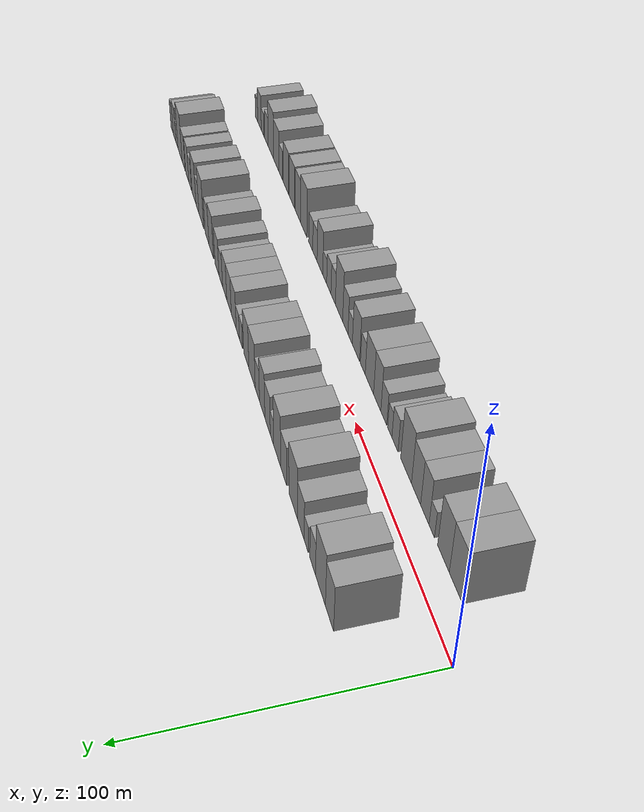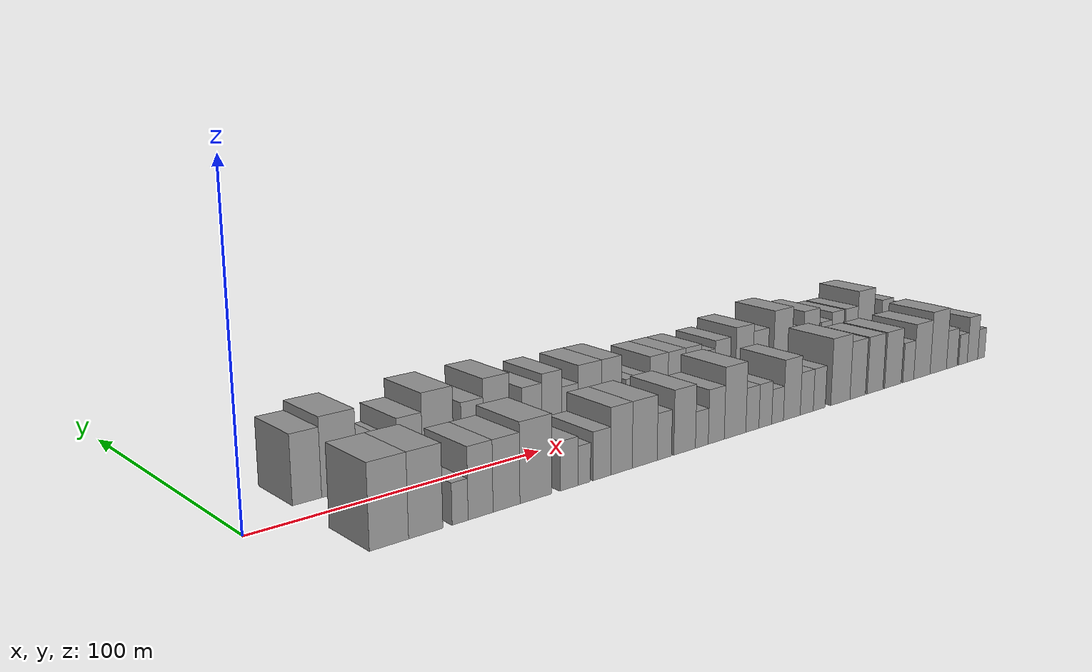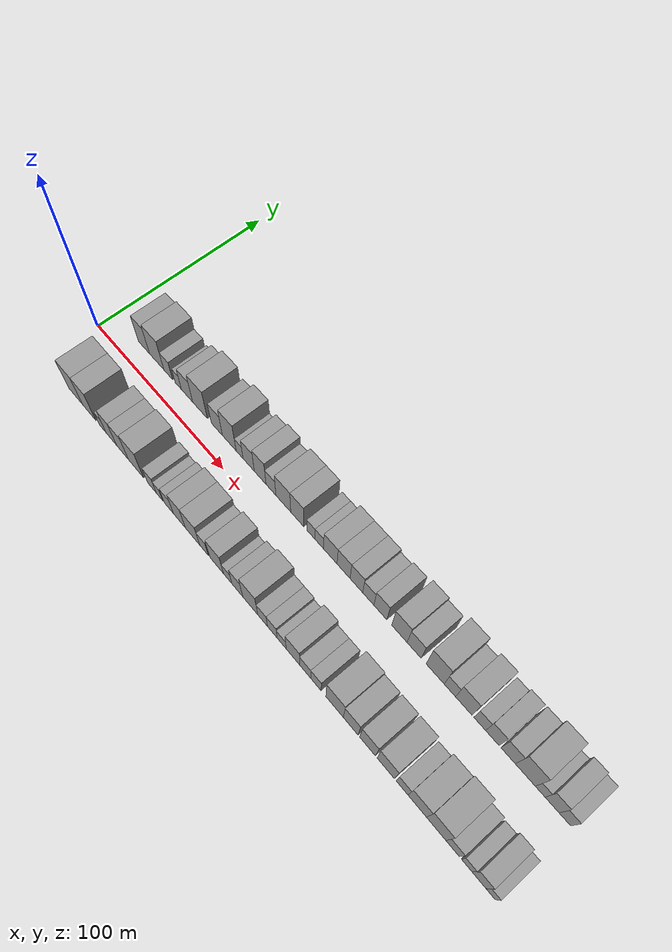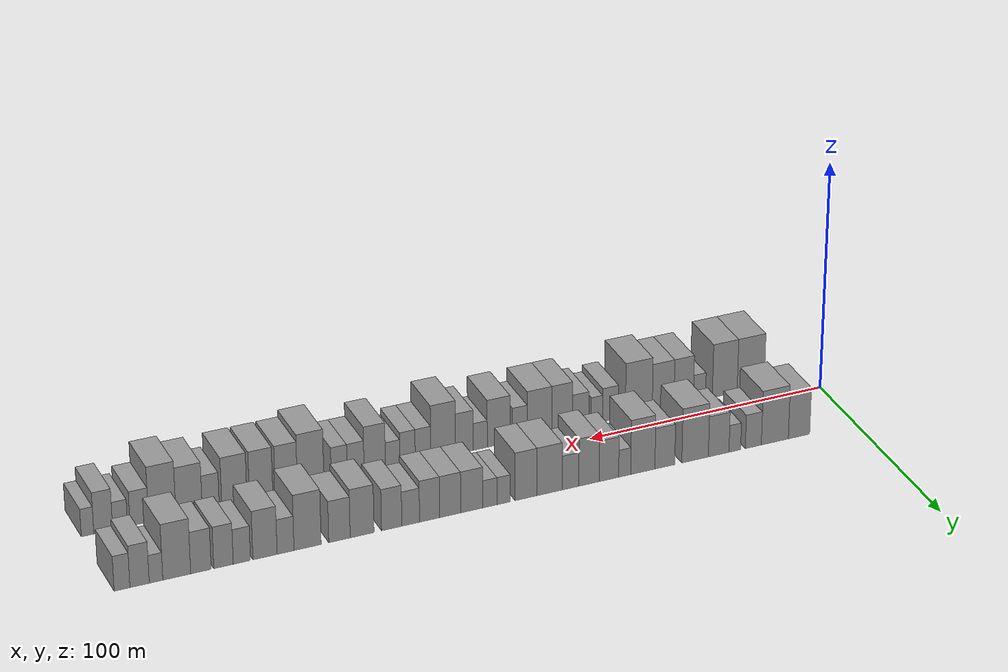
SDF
<sdf version="1.6">
 <world name="default">
  <scene>
   <sky><clouds><speed>12</speed></clouds></sky>
   <ambient>0.4 0.4 0.4 1</ambient>
   <background>0.7 0.7 0.7 1</background>
   <shadows>1</shadows>
  </scene>
  <gravity>0 0 -9.8066</gravity>
  <magnetic_field>6e-06 2.3e-05 -4.2e-05</magnetic_field>
  <physics default="0" name="default_physics" type="ode">
   <ode>
    <solver>
     <type>quick</type>
     <iters>10</iters>
     <sor>1.0</sor>
     <use_dynamic_moi_rescaling>0</use_dynamic_moi_rescaling>
    </solver>
    <constraints>
     <cfm>0</cfm>
     <erp>0.2</erp>
     <contact_max_correcting_vel>100</contact_max_correcting_vel>
     <contact_surface_layer>0.001</contact_surface_layer>
    </constraints>
   </ode>
   <max_step_size>0.004</max_step_size>
   <real_time_factor>1</real_time_factor>
   <real_time_update_rate>250</real_time_update_rate>
  </physics>
  <light name="sun" type="directional">
   <pose>0 0 10 0 0 0</pose>
   <diffuse>0.8 0.8 0.8 1</diffuse>
   <specular>0.2 0.2 0.2 1</specular>
   <attenuation>
    <range>1000</range>
    <constant>0.9</constant>
    <linear>0.01</linear>
    <quadratic>0.001</quadratic>
   </attenuation>
   <direction>-0.5 0.1 -0.9</direction>
  </light>
  <model name="building_1">
   <static>1</static>
   <pose>24.6154 20.0000 0 0.000000 0.000000 1.570796</pose>
   <link name="link">
    <pose>0 0 10.50 0 0 0</pose>
    <collision name="collision"><geometry><box><size>20.0000 9.2307 21.0000</size></box></geometry></collision>
    <visual name="visual">
     <cast_shadows>0</cast_shadows>
     <geometry><box><size>20.0000 9.2307 21.0000</size></box></geometry>
     <material>
      <script>
       <uri>model://grey_wall/materials/scripts</uri>
       <uri>model://grey_wall/materials/textures</uri>
       <name>vrc/grey_wall</name>
      </script>
     </material>
    </visual>
   </link>
  </model>
  <model name="building_2">
   <static>1</static>
   <pose>35.0574 20.0000 0 0.000000 0.000000 1.570796</pose>
   <link name="link">
    <pose>0 0 12.00 0 0 0</pose>
    <collision name="collision"><geometry><box><size>20.0000 11.6533 24.0000</size></box></geometry></collision>
    <visual name="visual">
     <cast_shadows>0</cast_shadows>
     <geometry><box><size>20.0000 11.6533 24.0000</size></box></geometry>
     <material>
      <script>
       <uri>model://grey_wall/materials/scripts</uri>
       <uri>model://grey_wall/materials/textures</uri>
       <name>vrc/grey_wall</name>
      </script>
     </material>
    </visual>
   </link>
  </model>
  <model name="building_3">
   <static>1</static>
   <pose>44.3191 20.0000 0 0.000000 0.000000 1.570796</pose>
   <link name="link">
    <pose>0 0 7.50 0 0 0</pose>
    <collision name="collision"><geometry><box><size>20.0000 6.8702 15.0000</size></box></geometry></collision>
    <visual name="visual">
     <cast_shadows>0</cast_shadows>
     <geometry><box><size>20.0000 6.8702 15.0000</size></box></geometry>
     <material>
      <script>
       <uri>model://grey_wall/materials/scripts</uri>
       <uri>model://grey_wall/materials/textures</uri>
       <name>vrc/grey_wall</name>
      </script>
     </material>
    </visual>
   </link>
  </model>
  <model name="building_4">
   <static>1</static>
   <pose>52.2593 20.0000 0 0.000000 0.000000 1.570796</pose>
   <link name="link">
    <pose>0 0 6.00 0 0 0</pose>
    <collision name="collision"><geometry><box><size>20.0000 5.0101 12.0000</size></box></geometry></collision>
    <visual name="visual">
     <cast_shadows>0</cast_shadows>
     <geometry><box><size>20.0000 5.0101 12.0000</size></box></geometry>
     <material>
      <script>
       <uri>model://grey_wall/materials/scripts</uri>
       <uri>model://grey_wall/materials/textures</uri>
       <name>vrc/grey_wall</name>
      </script>
     </material>
    </visual>
   </link>
  </model>
  <model name="building_5">
   <static>1</static>
   <pose>59.1592 20.0000 0 0.000000 0.000000 1.570796</pose>
   <link name="link">
    <pose>0 0 9.00 0 0 0</pose>
    <collision name="collision"><geometry><box><size>20.0000 8.7898 18.0000</size></box></geometry></collision>
    <visual name="visual">
     <cast_shadows>0</cast_shadows>
     <geometry><box><size>20.0000 8.7898 18.0000</size></box></geometry>
     <material>
      <script>
       <uri>model://grey_wall/materials/scripts</uri>
       <uri>model://grey_wall/materials/textures</uri>
       <name>vrc/grey_wall</name>
      </script>
     </material>
    </visual>
   </link>
  </model>
  <model name="building_6">
   <static>1</static>
   <pose>69.2039 20.0000 0 0.000000 0.000000 1.570796</pose>
   <link name="link">
    <pose>0 0 12.00 0 0 0</pose>
    <collision name="collision"><geometry><box><size>20.0000 11.2996 24.0000</size></box></geometry></collision>
    <visual name="visual">
     <cast_shadows>0</cast_shadows>
     <geometry><box><size>20.0000 11.2996 24.0000</size></box></geometry>
     <material>
      <script>
       <uri>model://grey_wall/materials/scripts</uri>
       <uri>model://grey_wall/materials/textures</uri>
       <name>vrc/grey_wall</name>
      </script>
     </material>
    </visual>
   </link>
  </model>
  <model name="building_7">
   <static>1</static>
   <pose>82.0477 20.0000 0 0.000000 0.000000 1.570796</pose>
   <link name="link">
    <pose>0 0 9.00 0 0 0</pose>
    <collision name="collision"><geometry><box><size>20.0000 8.3880 18.0000</size></box></geometry></collision>
    <visual name="visual">
     <cast_shadows>0</cast_shadows>
     <geometry><box><size>20.0000 8.3880 18.0000</size></box></geometry>
     <material>
      <script>
       <uri>model://grey_wall/materials/scripts</uri>
       <uri>model://grey_wall/materials/textures</uri>
       <name>vrc/grey_wall</name>
      </script>
     </material>
    </visual>
   </link>
  </model>
  <model name="building_8">
   <static>1</static>
   <pose>91.3459 20.0000 0 0.000000 0.000000 1.570796</pose>
   <link name="link">
    <pose>0 0 12.00 0 0 0</pose>
    <collision name="collision"><geometry><box><size>20.0000 10.2082 24.0000</size></box></geometry></collision>
    <visual name="visual">
     <cast_shadows>0</cast_shadows>
     <geometry><box><size>20.0000 10.2082 24.0000</size></box></geometry>
     <material>
      <script>
       <uri>model://grey_wall/materials/scripts</uri>
       <uri>model://grey_wall/materials/textures</uri>
       <name>vrc/grey_wall</name>
      </script>
     </material>
    </visual>
   </link>
  </model>
  <model name="building_9">
   <static>1</static>
   <pose>98.9628 20.0000 0 0.000000 0.000000 1.570796</pose>
   <link name="link">
    <pose>0 0 6.00 0 0 0</pose>
    <collision name="collision"><geometry><box><size>20.0000 5.0256 12.0000</size></box></geometry></collision>
    <visual name="visual">
     <cast_shadows>0</cast_shadows>
     <geometry><box><size>20.0000 5.0256 12.0000</size></box></geometry>
     <material>
      <script>
       <uri>model://grey_wall/materials/scripts</uri>
       <uri>model://grey_wall/materials/textures</uri>
       <name>vrc/grey_wall</name>
      </script>
     </material>
    </visual>
   </link>
  </model>
  <model name="building_10">
   <static>1</static>
   <pose>105.5644 20.0000 0 0.000000 0.000000 1.570796</pose>
   <link name="link">
    <pose>0 0 9.00 0 0 0</pose>
    <collision name="collision"><geometry><box><size>20.0000 8.1775 18.0000</size></box></geometry></collision>
    <visual name="visual">
     <cast_shadows>0</cast_shadows>
     <geometry><box><size>20.0000 8.1775 18.0000</size></box></geometry>
     <material>
      <script>
       <uri>model://grey_wall/materials/scripts</uri>
       <uri>model://grey_wall/materials/textures</uri>
       <name>vrc/grey_wall</name>
      </script>
     </material>
    </visual>
   </link>
  </model>
  <model name="building_11">
   <static>1</static>
   <pose>113.8745 20.0000 0 0.000000 0.000000 1.570796</pose>
   <link name="link">
    <pose>0 0 10.50 0 0 0</pose>
    <collision name="collision"><geometry><box><size>20.0000 8.4427 21.0000</size></box></geometry></collision>
    <visual name="visual">
     <cast_shadows>0</cast_shadows>
     <geometry><box><size>20.0000 8.4427 21.0000</size></box></geometry>
     <material>
      <script>
       <uri>model://grey_wall/materials/scripts</uri>
       <uri>model://grey_wall/materials/textures</uri>
       <name>vrc/grey_wall</name>
      </script>
     </material>
    </visual>
   </link>
  </model>
  <model name="building_12">
   <static>1</static>
   <pose>121.5920 20.0000 0 0.000000 0.000000 1.570796</pose>
   <link name="link">
    <pose>0 0 7.50 0 0 0</pose>
    <collision name="collision"><geometry><box><size>20.0000 6.9923 15.0000</size></box></geometry></collision>
    <visual name="visual">
     <cast_shadows>0</cast_shadows>
     <geometry><box><size>20.0000 6.9923 15.0000</size></box></geometry>
     <material>
      <script>
       <uri>model://grey_wall/materials/scripts</uri>
       <uri>model://grey_wall/materials/textures</uri>
       <name>vrc/grey_wall</name>
      </script>
     </material>
    </visual>
   </link>
  </model>
  <model name="building_13">
   <static>1</static>
   <pose>130.2661 20.0000 0 0.000000 0.000000 1.570796</pose>
   <link name="link">
    <pose>0 0 10.50 0 0 0</pose>
    <collision name="collision"><geometry><box><size>20.0000 10.3558 21.0000</size></box></geometry></collision>
    <visual name="visual">
     <cast_shadows>0</cast_shadows>
     <geometry><box><size>20.0000 10.3558 21.0000</size></box></geometry>
     <material>
      <script>
       <uri>model://grey_wall/materials/scripts</uri>
       <uri>model://grey_wall/materials/textures</uri>
       <name>vrc/grey_wall</name>
      </script>
     </material>
    </visual>
   </link>
  </model>
  <model name="building_14">
   <static>1</static>
   <pose>139.9339 20.0000 0 0.000000 0.000000 1.570796</pose>
   <link name="link">
    <pose>0 0 10.50 0 0 0</pose>
    <collision name="collision"><geometry><box><size>20.0000 8.9798 21.0000</size></box></geometry></collision>
    <visual name="visual">
     <cast_shadows>0</cast_shadows>
     <geometry><box><size>20.0000 8.9798 21.0000</size></box></geometry>
     <material>
      <script>
       <uri>model://grey_wall/materials/scripts</uri>
       <uri>model://grey_wall/materials/textures</uri>
       <name>vrc/grey_wall</name>
      </script>
     </material>
    </visual>
   </link>
  </model>
  <model name="building_15">
   <static>1</static>
   <pose>149.1682 20.0000 0 0.000000 0.000000 1.570796</pose>
   <link name="link">
    <pose>0 0 6.00 0 0 0</pose>
    <collision name="collision"><geometry><box><size>20.0000 5.4888 12.0000</size></box></geometry></collision>
    <visual name="visual">
     <cast_shadows>0</cast_shadows>
     <geometry><box><size>20.0000 5.4888 12.0000</size></box></geometry>
     <material>
      <script>
       <uri>model://grey_wall/materials/scripts</uri>
       <uri>model://grey_wall/materials/textures</uri>
       <name>vrc/grey_wall</name>
      </script>
     </material>
    </visual>
   </link>
  </model>
  <model name="building_16">
   <static>1</static>
   <pose>154.8276 20.0000 0 0.000000 0.000000 1.570796</pose>
   <link name="link">
    <pose>0 0 6.00 0 0 0</pose>
    <collision name="collision"><geometry><box><size>20.0000 5.8300 12.0000</size></box></geometry></collision>
    <visual name="visual">
     <cast_shadows>0</cast_shadows>
     <geometry><box><size>20.0000 5.8300 12.0000</size></box></geometry>
     <material>
      <script>
       <uri>model://grey_wall/materials/scripts</uri>
       <uri>model://grey_wall/materials/textures</uri>
       <name>vrc/grey_wall</name>
      </script>
     </material>
    </visual>
   </link>
  </model>
  <model name="building_17">
   <static>1</static>
   <pose>162.2196 20.0000 0 0.000000 0.000000 1.570796</pose>
   <link name="link">
    <pose>0 0 9.00 0 0 0</pose>
    <collision name="collision"><geometry><box><size>20.0000 8.9540 18.0000</size></box></geometry></collision>
    <visual name="visual">
     <cast_shadows>0</cast_shadows>
     <geometry><box><size>20.0000 8.9540 18.0000</size></box></geometry>
     <material>
      <script>
       <uri>model://grey_wall/materials/scripts</uri>
       <uri>model://grey_wall/materials/textures</uri>
       <name>vrc/grey_wall</name>
      </script>
     </material>
    </visual>
   </link>
  </model>
  <model name="building_18">
   <static>1</static>
   <pose>170.9655 20.0000 0 0.000000 0.000000 1.570796</pose>
   <link name="link">
    <pose>0 0 9.00 0 0 0</pose>
    <collision name="collision"><geometry><box><size>20.0000 8.5378 18.0000</size></box></geometry></collision>
    <visual name="visual">
     <cast_shadows>0</cast_shadows>
     <geometry><box><size>20.0000 8.5378 18.0000</size></box></geometry>
     <material>
      <script>
       <uri>model://grey_wall/materials/scripts</uri>
       <uri>model://grey_wall/materials/textures</uri>
       <name>vrc/grey_wall</name>
      </script>
     </material>
    </visual>
   </link>
  </model>
  <model name="building_19">
   <static>1</static>
   <pose>179.3129 20.0000 0 0.000000 0.000000 1.570796</pose>
   <link name="link">
    <pose>0 0 9.00 0 0 0</pose>
    <collision name="collision"><geometry><box><size>20.0000 8.1570 18.0000</size></box></geometry></collision>
    <visual name="visual">
     <cast_shadows>0</cast_shadows>
     <geometry><box><size>20.0000 8.1570 18.0000</size></box></geometry>
     <material>
      <script>
       <uri>model://grey_wall/materials/scripts</uri>
       <uri>model://grey_wall/materials/textures</uri>
       <name>vrc/grey_wall</name>
      </script>
     </material>
    </visual>
   </link>
  </model>
  <model name="building_20">
   <static>1</static>
   <pose>186.9675 20.0000 0 0.000000 0.000000 1.570796</pose>
   <link name="link">
    <pose>0 0 7.50 0 0 0</pose>
    <collision name="collision"><geometry><box><size>20.0000 7.1522 15.0000</size></box></geometry></collision>
    <visual name="visual">
     <cast_shadows>0</cast_shadows>
     <geometry><box><size>20.0000 7.1522 15.0000</size></box></geometry>
     <material>
      <script>
       <uri>model://grey_wall/materials/scripts</uri>
       <uri>model://grey_wall/materials/textures</uri>
       <name>vrc/grey_wall</name>
      </script>
     </material>
    </visual>
   </link>
  </model>
  <model name="building_21">
   <static>1</static>
   <pose>194.6178 20.0000 0 0.000000 0.000000 1.570796</pose>
   <link name="link">
    <pose>0 0 9.00 0 0 0</pose>
    <collision name="collision"><geometry><box><size>20.0000 8.1486 18.0000</size></box></geometry></collision>
    <visual name="visual">
     <cast_shadows>0</cast_shadows>
     <geometry><box><size>20.0000 8.1486 18.0000</size></box></geometry>
     <material>
      <script>
       <uri>model://grey_wall/materials/scripts</uri>
       <uri>model://grey_wall/materials/textures</uri>
       <name>vrc/grey_wall</name>
      </script>
     </material>
    </visual>
   </link>
  </model>
  <model name="building_22">
   <static>1</static>
   <pose>206.4582 20.0000 0 0.000000 0.000000 1.570796</pose>
   <link name="link">
    <pose>0 0 10.50 0 0 0</pose>
    <collision name="collision"><geometry><box><size>20.0000 9.5322 21.0000</size></box></geometry></collision>
    <visual name="visual">
     <cast_shadows>0</cast_shadows>
     <geometry><box><size>20.0000 9.5322 21.0000</size></box></geometry>
     <material>
      <script>
       <uri>model://grey_wall/materials/scripts</uri>
       <uri>model://grey_wall/materials/textures</uri>
       <name>vrc/grey_wall</name>
      </script>
     </material>
    </visual>
   </link>
  </model>
  <model name="building_23">
   <static>1</static>
   <pose>215.4928 20.0000 0 0.000000 0.000000 1.570796</pose>
   <link name="link">
    <pose>0 0 9.00 0 0 0</pose>
    <collision name="collision"><geometry><box><size>20.0000 8.5369 18.0000</size></box></geometry></collision>
    <visual name="visual">
     <cast_shadows>0</cast_shadows>
     <geometry><box><size>20.0000 8.5369 18.0000</size></box></geometry>
     <material>
      <script>
       <uri>model://grey_wall/materials/scripts</uri>
       <uri>model://grey_wall/materials/textures</uri>
       <name>vrc/grey_wall</name>
      </script>
     </material>
    </visual>
   </link>
  </model>
  <model name="building_24">
   <static>1</static>
   <pose>228.1328 20.0000 0 0.000000 0.000000 1.570796</pose>
   <link name="link">
    <pose>0 0 12.00 0 0 0</pose>
    <collision name="collision"><geometry><box><size>20.0000 10.7432 24.0000</size></box></geometry></collision>
    <visual name="visual">
     <cast_shadows>0</cast_shadows>
     <geometry><box><size>20.0000 10.7432 24.0000</size></box></geometry>
     <material>
      <script>
       <uri>model://grey_wall/materials/scripts</uri>
       <uri>model://grey_wall/materials/textures</uri>
       <name>vrc/grey_wall</name>
      </script>
     </material>
    </visual>
   </link>
  </model>
  <model name="building_25">
   <static>1</static>
   <pose>236.8446 20.0000 0 0.000000 0.000000 1.570796</pose>
   <link name="link">
    <pose>0 0 7.50 0 0 0</pose>
    <collision name="collision"><geometry><box><size>20.0000 6.6804 15.0000</size></box></geometry></collision>
    <visual name="visual">
     <cast_shadows>0</cast_shadows>
     <geometry><box><size>20.0000 6.6804 15.0000</size></box></geometry>
     <material>
      <script>
       <uri>model://grey_wall/materials/scripts</uri>
       <uri>model://grey_wall/materials/textures</uri>
       <name>vrc/grey_wall</name>
      </script>
     </material>
    </visual>
   </link>
  </model>
  <model name="building_26">
   <static>1</static>
   <pose>244.9300 20.0000 0 0.000000 0.000000 1.570796</pose>
   <link name="link">
    <pose>0 0 10.50 0 0 0</pose>
    <collision name="collision"><geometry><box><size>20.0000 9.4905 21.0000</size></box></geometry></collision>
    <visual name="visual">
     <cast_shadows>0</cast_shadows>
     <geometry><box><size>20.0000 9.4905 21.0000</size></box></geometry>
     <material>
      <script>
       <uri>model://grey_wall/materials/scripts</uri>
       <uri>model://grey_wall/materials/textures</uri>
       <name>vrc/grey_wall</name>
      </script>
     </material>
    </visual>
   </link>
  </model>
  <model name="building_27">
   <static>1</static>
   <pose>254.0313 20.0000 0 0.000000 0.000000 1.570796</pose>
   <link name="link">
    <pose>0 0 7.50 0 0 0</pose>
    <collision name="collision"><geometry><box><size>20.0000 6.7121 15.0000</size></box></geometry></collision>
    <visual name="visual">
     <cast_shadows>0</cast_shadows>
     <geometry><box><size>20.0000 6.7121 15.0000</size></box></geometry>
     <material>
      <script>
       <uri>model://grey_wall/materials/scripts</uri>
       <uri>model://grey_wall/materials/textures</uri>
       <name>vrc/grey_wall</name>
      </script>
     </material>
    </visual>
   </link>
  </model>
  <model name="building_28">
   <static>1</static>
   <pose>261.1885 20.0000 0 0.000000 0.000000 1.570796</pose>
   <link name="link">
    <pose>0 0 9.00 0 0 0</pose>
    <collision name="collision"><geometry><box><size>20.0000 7.6023 18.0000</size></box></geometry></collision>
    <visual name="visual">
     <cast_shadows>0</cast_shadows>
     <geometry><box><size>20.0000 7.6023 18.0000</size></box></geometry>
     <material>
      <script>
       <uri>model://grey_wall/materials/scripts</uri>
       <uri>model://grey_wall/materials/textures</uri>
       <name>vrc/grey_wall</name>
      </script>
     </material>
    </visual>
   </link>
  </model>
  <model name="building_29">
   <static>1</static>
   <pose>269.9641 20.0000 0 0.000000 0.000000 1.570796</pose>
   <link name="link">
    <pose>0 0 9.00 0 0 0</pose>
    <collision name="collision"><geometry><box><size>20.0000 7.9489 18.0000</size></box></geometry></collision>
    <visual name="visual">
     <cast_shadows>0</cast_shadows>
     <geometry><box><size>20.0000 7.9489 18.0000</size></box></geometry>
     <material>
      <script>
       <uri>model://grey_wall/materials/scripts</uri>
       <uri>model://grey_wall/materials/textures</uri>
       <name>vrc/grey_wall</name>
      </script>
     </material>
    </visual>
   </link>
  </model>
  <model name="building_30">
   <static>1</static>
   <pose>279.3393 20.0000 0 0.000000 0.000000 1.570796</pose>
   <link name="link">
    <pose>0 0 12.00 0 0 0</pose>
    <collision name="collision"><geometry><box><size>20.0000 10.8015 24.0000</size></box></geometry></collision>
    <visual name="visual">
     <cast_shadows>0</cast_shadows>
     <geometry><box><size>20.0000 10.8015 24.0000</size></box></geometry>
     <material>
      <script>
       <uri>model://grey_wall/materials/scripts</uri>
       <uri>model://grey_wall/materials/textures</uri>
       <name>vrc/grey_wall</name>
      </script>
     </material>
    </visual>
   </link>
  </model>
  <model name="building_31">
   <static>1</static>
   <pose>287.3573 20.0000 0 0.000000 0.000000 1.570796</pose>
   <link name="link">
    <pose>0 0 6.00 0 0 0</pose>
    <collision name="collision"><geometry><box><size>20.0000 5.2344 12.0000</size></box></geometry></collision>
    <visual name="visual">
     <cast_shadows>0</cast_shadows>
     <geometry><box><size>20.0000 5.2344 12.0000</size></box></geometry>
     <material>
      <script>
       <uri>model://grey_wall/materials/scripts</uri>
       <uri>model://grey_wall/materials/textures</uri>
       <name>vrc/grey_wall</name>
      </script>
     </material>
    </visual>
   </link>
  </model>
  <model name="building_32">
   <static>1</static>
   <pose>293.6789 20.0000 0 0.000000 0.000000 1.570796</pose>
   <link name="link">
    <pose>0 0 9.00 0 0 0</pose>
    <collision name="collision"><geometry><box><size>20.0000 7.4087 18.0000</size></box></geometry></collision>
    <visual name="visual">
     <cast_shadows>0</cast_shadows>
     <geometry><box><size>20.0000 7.4087 18.0000</size></box></geometry>
     <material>
      <script>
       <uri>model://grey_wall/materials/scripts</uri>
       <uri>model://grey_wall/materials/textures</uri>
       <name>vrc/grey_wall</name>
      </script>
     </material>
    </visual>
   </link>
  </model>
  <model name="building_33">
   <static>1</static>
   <pose>300.4139 20.0000 0 0.000000 0.000000 1.570796</pose>
   <link name="link">
    <pose>0 0 7.50 0 0 0</pose>
    <collision name="collision"><geometry><box><size>20.0000 6.0613 15.0000</size></box></geometry></collision>
    <visual name="visual">
     <cast_shadows>0</cast_shadows>
     <geometry><box><size>20.0000 6.0613 15.0000</size></box></geometry>
     <material>
      <script>
       <uri>model://grey_wall/materials/scripts</uri>
       <uri>model://grey_wall/materials/textures</uri>
       <name>vrc/grey_wall</name>
      </script>
     </material>
    </visual>
   </link>
  </model>
  <model name="building_34">
   <static>1</static>
   <pose>25.9539 -20.0000 0 0.000000 0.000000 1.570796</pose>
   <link name="link">
    <pose>0 0 12.00 0 0 0</pose>
    <collision name="collision"><geometry><box><size>20.0000 11.9078 24.0000</size></box></geometry></collision>
    <visual name="visual">
     <cast_shadows>0</cast_shadows>
     <geometry><box><size>20.0000 11.9078 24.0000</size></box></geometry>
     <material>
      <script>
       <uri>model://grey_wall/materials/scripts</uri>
       <uri>model://grey_wall/materials/textures</uri>
       <name>vrc/grey_wall</name>
      </script>
     </material>
    </visual>
   </link>
  </model>
  <model name="building_35">
   <static>1</static>
   <pose>37.3407 -20.0000 0 0.000000 0.000000 1.570796</pose>
   <link name="link">
    <pose>0 0 12.00 0 0 0</pose>
    <collision name="collision"><geometry><box><size>20.0000 10.8658 24.0000</size></box></geometry></collision>
    <visual name="visual">
     <cast_shadows>0</cast_shadows>
     <geometry><box><size>20.0000 10.8658 24.0000</size></box></geometry>
     <material>
      <script>
       <uri>model://grey_wall/materials/scripts</uri>
       <uri>model://grey_wall/materials/textures</uri>
       <name>vrc/grey_wall</name>
      </script>
     </material>
    </visual>
   </link>
  </model>
  <model name="building_36">
   <static>1</static>
   <pose>48.4187 -20.0000 0 0.000000 0.000000 1.570796</pose>
   <link name="link">
    <pose>0 0 6.00 0 0 0</pose>
    <collision name="collision"><geometry><box><size>20.0000 5.2903 12.0000</size></box></geometry></collision>
    <visual name="visual">
     <cast_shadows>0</cast_shadows>
     <geometry><box><size>20.0000 5.2903 12.0000</size></box></geometry>
     <material>
      <script>
       <uri>model://grey_wall/materials/scripts</uri>
       <uri>model://grey_wall/materials/textures</uri>
       <name>vrc/grey_wall</name>
      </script>
     </material>
    </visual>
   </link>
  </model>
  <model name="building_37">
   <static>1</static>
   <pose>55.2820 -20.0000 0 0.000000 0.000000 1.570796</pose>
   <link name="link">
    <pose>0 0 10.50 0 0 0</pose>
    <collision name="collision"><geometry><box><size>20.0000 8.4362 21.0000</size></box></geometry></collision>
    <visual name="visual">
     <cast_shadows>0</cast_shadows>
     <geometry><box><size>20.0000 8.4362 21.0000</size></box></geometry>
     <material>
      <script>
       <uri>model://grey_wall/materials/scripts</uri>
       <uri>model://grey_wall/materials/textures</uri>
       <name>vrc/grey_wall</name>
      </script>
     </material>
    </visual>
   </link>
  </model>
  <model name="building_38">
   <static>1</static>
   <pose>64.2011 -20.0000 0 0.000000 0.000000 1.570796</pose>
   <link name="link">
    <pose>0 0 10.50 0 0 0</pose>
    <collision name="collision"><geometry><box><size>20.0000 9.4021 21.0000</size></box></geometry></collision>
    <visual name="visual">
     <cast_shadows>0</cast_shadows>
     <geometry><box><size>20.0000 9.4021 21.0000</size></box></geometry>
     <material>
      <script>
       <uri>model://grey_wall/materials/scripts</uri>
       <uri>model://grey_wall/materials/textures</uri>
       <name>vrc/grey_wall</name>
      </script>
     </material>
    </visual>
   </link>
  </model>
  <model name="building_39">
   <static>1</static>
   <pose>74.7016 -20.0000 0 0.000000 0.000000 1.570796</pose>
   <link name="link">
    <pose>0 0 12.00 0 0 0</pose>
    <collision name="collision"><geometry><box><size>20.0000 11.5989 24.0000</size></box></geometry></collision>
    <visual name="visual">
     <cast_shadows>0</cast_shadows>
     <geometry><box><size>20.0000 11.5989 24.0000</size></box></geometry>
     <material>
      <script>
       <uri>model://grey_wall/materials/scripts</uri>
       <uri>model://grey_wall/materials/textures</uri>
       <name>vrc/grey_wall</name>
      </script>
     </material>
    </visual>
   </link>
  </model>
  <model name="building_40">
   <static>1</static>
   <pose>86.9020 -20.0000 0 0.000000 0.000000 1.570796</pose>
   <link name="link">
    <pose>0 0 7.50 0 0 0</pose>
    <collision name="collision"><geometry><box><size>20.0000 6.8019 15.0000</size></box></geometry></collision>
    <visual name="visual">
     <cast_shadows>0</cast_shadows>
     <geometry><box><size>20.0000 6.8019 15.0000</size></box></geometry>
     <material>
      <script>
       <uri>model://grey_wall/materials/scripts</uri>
       <uri>model://grey_wall/materials/textures</uri>
       <name>vrc/grey_wall</name>
      </script>
     </material>
    </visual>
   </link>
  </model>
  <model name="building_41">
   <static>1</static>
   <pose>92.7327 -20.0000 0 0.000000 0.000000 1.570796</pose>
   <link name="link">
    <pose>0 0 6.00 0 0 0</pose>
    <collision name="collision"><geometry><box><size>20.0000 4.8594 12.0000</size></box></geometry></collision>
    <visual name="visual">
     <cast_shadows>0</cast_shadows>
     <geometry><box><size>20.0000 4.8594 12.0000</size></box></geometry>
     <material>
      <script>
       <uri>model://grey_wall/materials/scripts</uri>
       <uri>model://grey_wall/materials/textures</uri>
       <name>vrc/grey_wall</name>
      </script>
     </material>
    </visual>
   </link>
  </model>
  <model name="building_42">
   <static>1</static>
   <pose>99.6428 -20.0000 0 0.000000 0.000000 1.570796</pose>
   <link name="link">
    <pose>0 0 7.50 0 0 0</pose>
    <collision name="collision"><geometry><box><size>20.0000 6.9609 15.0000</size></box></geometry></collision>
    <visual name="visual">
     <cast_shadows>0</cast_shadows>
     <geometry><box><size>20.0000 6.9609 15.0000</size></box></geometry>
     <material>
      <script>
       <uri>model://grey_wall/materials/scripts</uri>
       <uri>model://grey_wall/materials/textures</uri>
       <name>vrc/grey_wall</name>
      </script>
     </material>
    </visual>
   </link>
  </model>
  <model name="building_43">
   <static>1</static>
   <pose>107.4992 -20.0000 0 0.000000 0.000000 1.570796</pose>
   <link name="link">
    <pose>0 0 10.50 0 0 0</pose>
    <collision name="collision"><geometry><box><size>20.0000 8.7518 21.0000</size></box></geometry></collision>
    <visual name="visual">
     <cast_shadows>0</cast_shadows>
     <geometry><box><size>20.0000 8.7518 21.0000</size></box></geometry>
     <material>
      <script>
       <uri>model://grey_wall/materials/scripts</uri>
       <uri>model://grey_wall/materials/textures</uri>
       <name>vrc/grey_wall</name>
      </script>
     </material>
    </visual>
   </link>
  </model>
  <model name="building_44">
   <static>1</static>
   <pose>117.0980 -20.0000 0 0.000000 0.000000 1.570796</pose>
   <link name="link">
    <pose>0 0 10.50 0 0 0</pose>
    <collision name="collision"><geometry><box><size>20.0000 10.4457 21.0000</size></box></geometry></collision>
    <visual name="visual">
     <cast_shadows>0</cast_shadows>
     <geometry><box><size>20.0000 10.4457 21.0000</size></box></geometry>
     <material>
      <script>
       <uri>model://grey_wall/materials/scripts</uri>
       <uri>model://grey_wall/materials/textures</uri>
       <name>vrc/grey_wall</name>
      </script>
     </material>
    </visual>
   </link>
  </model>
  <model name="building_45">
   <static>1</static>
   <pose>125.4090 -20.0000 0 0.000000 0.000000 1.570796</pose>
   <link name="link">
    <pose>0 0 7.50 0 0 0</pose>
    <collision name="collision"><geometry><box><size>20.0000 6.1764 15.0000</size></box></geometry></collision>
    <visual name="visual">
     <cast_shadows>0</cast_shadows>
     <geometry><box><size>20.0000 6.1764 15.0000</size></box></geometry>
     <material>
      <script>
       <uri>model://grey_wall/materials/scripts</uri>
       <uri>model://grey_wall/materials/textures</uri>
       <name>vrc/grey_wall</name>
      </script>
     </material>
    </visual>
   </link>
  </model>
  <model name="building_46">
   <static>1</static>
   <pose>134.2944 -20.0000 0 0.000000 0.000000 1.570796</pose>
   <link name="link">
    <pose>0 0 10.50 0 0 0</pose>
    <collision name="collision"><geometry><box><size>20.0000 9.5943 21.0000</size></box></geometry></collision>
    <visual name="visual">
     <cast_shadows>0</cast_shadows>
     <geometry><box><size>20.0000 9.5943 21.0000</size></box></geometry>
     <material>
      <script>
       <uri>model://grey_wall/materials/scripts</uri>
       <uri>model://grey_wall/materials/textures</uri>
       <name>vrc/grey_wall</name>
      </script>
     </material>
    </visual>
   </link>
  </model>
  <model name="building_47">
   <static>1</static>
   <pose>142.0074 -20.0000 0 0.000000 0.000000 1.570796</pose>
   <link name="link">
    <pose>0 0 6.00 0 0 0</pose>
    <collision name="collision"><geometry><box><size>20.0000 5.8316 12.0000</size></box></geometry></collision>
    <visual name="visual">
     <cast_shadows>0</cast_shadows>
     <geometry><box><size>20.0000 5.8316 12.0000</size></box></geometry>
     <material>
      <script>
       <uri>model://grey_wall/materials/scripts</uri>
       <uri>model://grey_wall/materials/textures</uri>
       <name>vrc/grey_wall</name>
      </script>
     </material>
    </visual>
   </link>
  </model>
  <model name="building_48">
   <static>1</static>
   <pose>148.6283 -20.0000 0 0.000000 0.000000 1.570796</pose>
   <link name="link">
    <pose>0 0 9.00 0 0 0</pose>
    <collision name="collision"><geometry><box><size>20.0000 7.4103 18.0000</size></box></geometry></collision>
    <visual name="visual">
     <cast_shadows>0</cast_shadows>
     <geometry><box><size>20.0000 7.4103 18.0000</size></box></geometry>
     <material>
      <script>
       <uri>model://grey_wall/materials/scripts</uri>
       <uri>model://grey_wall/materials/textures</uri>
       <name>vrc/grey_wall</name>
      </script>
     </material>
    </visual>
   </link>
  </model>
  <model name="building_49">
   <static>1</static>
   <pose>157.4810 -20.0000 0 0.000000 0.000000 1.570796</pose>
   <link name="link">
    <pose>0 0 12.00 0 0 0</pose>
    <collision name="collision"><geometry><box><size>20.0000 10.2952 24.0000</size></box></geometry></collision>
    <visual name="visual">
     <cast_shadows>0</cast_shadows>
     <geometry><box><size>20.0000 10.2952 24.0000</size></box></geometry>
     <material>
      <script>
       <uri>model://grey_wall/materials/scripts</uri>
       <uri>model://grey_wall/materials/textures</uri>
       <name>vrc/grey_wall</name>
      </script>
     </material>
    </visual>
   </link>
  </model>
  <model name="building_50">
   <static>1</static>
   <pose>165.8320 -20.0000 0 0.000000 0.000000 1.570796</pose>
   <link name="link">
    <pose>0 0 7.50 0 0 0</pose>
    <collision name="collision"><geometry><box><size>20.0000 6.4067 15.0000</size></box></geometry></collision>
    <visual name="visual">
     <cast_shadows>0</cast_shadows>
     <geometry><box><size>20.0000 6.4067 15.0000</size></box></geometry>
     <material>
      <script>
       <uri>model://grey_wall/materials/scripts</uri>
       <uri>model://grey_wall/materials/textures</uri>
       <name>vrc/grey_wall</name>
      </script>
     </material>
    </visual>
   </link>
  </model>
  <model name="building_51">
   <static>1</static>
   <pose>172.2355 -20.0000 0 0.000000 0.000000 1.570796</pose>
   <link name="link">
    <pose>0 0 7.50 0 0 0</pose>
    <collision name="collision"><geometry><box><size>20.0000 6.4002 15.0000</size></box></geometry></collision>
    <visual name="visual">
     <cast_shadows>0</cast_shadows>
     <geometry><box><size>20.0000 6.4002 15.0000</size></box></geometry>
     <material>
      <script>
       <uri>model://grey_wall/materials/scripts</uri>
       <uri>model://grey_wall/materials/textures</uri>
       <name>vrc/grey_wall</name>
      </script>
     </material>
    </visual>
   </link>
  </model>
  <model name="building_52">
   <static>1</static>
   <pose>178.4016 -20.0000 0 0.000000 0.000000 1.570796</pose>
   <link name="link">
    <pose>0 0 6.00 0 0 0</pose>
    <collision name="collision"><geometry><box><size>20.0000 5.9320 12.0000</size></box></geometry></collision>
    <visual name="visual">
     <cast_shadows>0</cast_shadows>
     <geometry><box><size>20.0000 5.9320 12.0000</size></box></geometry>
     <material>
      <script>
       <uri>model://grey_wall/materials/scripts</uri>
       <uri>model://grey_wall/materials/textures</uri>
       <name>vrc/grey_wall</name>
      </script>
     </material>
    </visual>
   </link>
  </model>
  <model name="building_53">
   <static>1</static>
   <pose>185.7401 -20.0000 0 0.000000 0.000000 1.570796</pose>
   <link name="link">
    <pose>0 0 10.50 0 0 0</pose>
    <collision name="collision"><geometry><box><size>20.0000 8.7452 21.0000</size></box></geometry></collision>
    <visual name="visual">
     <cast_shadows>0</cast_shadows>
     <geometry><box><size>20.0000 8.7452 21.0000</size></box></geometry>
     <material>
      <script>
       <uri>model://grey_wall/materials/scripts</uri>
       <uri>model://grey_wall/materials/textures</uri>
       <name>vrc/grey_wall</name>
      </script>
     </material>
    </visual>
   </link>
  </model>
  <model name="building_54">
   <static>1</static>
   <pose>193.5712 -20.0000 0 0.000000 0.000000 1.570796</pose>
   <link name="link">
    <pose>0 0 7.50 0 0 0</pose>
    <collision name="collision"><geometry><box><size>20.0000 6.9170 15.0000</size></box></geometry></collision>
    <visual name="visual">
     <cast_shadows>0</cast_shadows>
     <geometry><box><size>20.0000 6.9170 15.0000</size></box></geometry>
     <material>
      <script>
       <uri>model://grey_wall/materials/scripts</uri>
       <uri>model://grey_wall/materials/textures</uri>
       <name>vrc/grey_wall</name>
      </script>
     </material>
    </visual>
   </link>
  </model>
  <model name="building_55">
   <static>1</static>
   <pose>200.2827 -20.0000 0 0.000000 0.000000 1.570796</pose>
   <link name="link">
    <pose>0 0 7.50 0 0 0</pose>
    <collision name="collision"><geometry><box><size>20.0000 6.5060 15.0000</size></box></geometry></collision>
    <visual name="visual">
     <cast_shadows>0</cast_shadows>
     <geometry><box><size>20.0000 6.5060 15.0000</size></box></geometry>
     <material>
      <script>
       <uri>model://grey_wall/materials/scripts</uri>
       <uri>model://grey_wall/materials/textures</uri>
       <name>vrc/grey_wall</name>
      </script>
     </material>
    </visual>
   </link>
  </model>
  <model name="building_56">
   <static>1</static>
   <pose>211.9274 -20.0000 0 0.000000 0.000000 1.570796</pose>
   <link name="link">
    <pose>0 0 12.00 0 0 0</pose>
    <collision name="collision"><geometry><box><size>20.0000 10.7833 24.0000</size></box></geometry></collision>
    <visual name="visual">
     <cast_shadows>0</cast_shadows>
     <geometry><box><size>20.0000 10.7833 24.0000</size></box></geometry>
     <material>
      <script>
       <uri>model://grey_wall/materials/scripts</uri>
       <uri>model://grey_wall/materials/textures</uri>
       <name>vrc/grey_wall</name>
      </script>
     </material>
    </visual>
   </link>
  </model>
  <model name="building_57">
   <static>1</static>
   <pose>221.7793 -20.0000 0 0.000000 0.000000 1.570796</pose>
   <link name="link">
    <pose>0 0 10.50 0 0 0</pose>
    <collision name="collision"><geometry><box><size>20.0000 8.9206 21.0000</size></box></geometry></collision>
    <visual name="visual">
     <cast_shadows>0</cast_shadows>
     <geometry><box><size>20.0000 8.9206 21.0000</size></box></geometry>
     <material>
      <script>
       <uri>model://grey_wall/materials/scripts</uri>
       <uri>model://grey_wall/materials/textures</uri>
       <name>vrc/grey_wall</name>
      </script>
     </material>
    </visual>
   </link>
  </model>
  <model name="building_58">
   <static>1</static>
   <pose>231.9259 -20.0000 0 0.000000 0.000000 1.570796</pose>
   <link name="link">
    <pose>0 0 10.50 0 0 0</pose>
    <collision name="collision"><geometry><box><size>20.0000 9.3726 21.0000</size></box></geometry></collision>
    <visual name="visual">
     <cast_shadows>0</cast_shadows>
     <geometry><box><size>20.0000 9.3726 21.0000</size></box></geometry>
     <material>
      <script>
       <uri>model://grey_wall/materials/scripts</uri>
       <uri>model://grey_wall/materials/textures</uri>
       <name>vrc/grey_wall</name>
      </script>
     </material>
    </visual>
   </link>
  </model>
  <model name="building_59">
   <static>1</static>
   <pose>242.6646 -20.0000 0 0.000000 0.000000 1.570796</pose>
   <link name="link">
    <pose>0 0 10.50 0 0 0</pose>
    <collision name="collision"><geometry><box><size>20.0000 10.1049 21.0000</size></box></geometry></collision>
    <visual name="visual">
     <cast_shadows>0</cast_shadows>
     <geometry><box><size>20.0000 10.1049 21.0000</size></box></geometry>
     <material>
      <script>
       <uri>model://grey_wall/materials/scripts</uri>
       <uri>model://grey_wall/materials/textures</uri>
       <name>vrc/grey_wall</name>
      </script>
     </material>
    </visual>
   </link>
  </model>
  <model name="building_60">
   <static>1</static>
   <pose>252.1143 -20.0000 0 0.000000 0.000000 1.570796</pose>
   <link name="link">
    <pose>0 0 7.50 0 0 0</pose>
    <collision name="collision"><geometry><box><size>20.0000 6.7946 15.0000</size></box></geometry></collision>
    <visual name="visual">
     <cast_shadows>0</cast_shadows>
     <geometry><box><size>20.0000 6.7946 15.0000</size></box></geometry>
     <material>
      <script>
       <uri>model://grey_wall/materials/scripts</uri>
       <uri>model://grey_wall/materials/textures</uri>
       <name>vrc/grey_wall</name>
      </script>
     </material>
    </visual>
   </link>
  </model>
  <model name="building_61">
   <static>1</static>
   <pose>260.7395 -20.0000 0 0.000000 0.000000 1.570796</pose>
   <link name="link">
    <pose>0 0 10.50 0 0 0</pose>
    <collision name="collision"><geometry><box><size>20.0000 10.4557 21.0000</size></box></geometry></collision>
    <visual name="visual">
     <cast_shadows>0</cast_shadows>
     <geometry><box><size>20.0000 10.4557 21.0000</size></box></geometry>
     <material>
      <script>
       <uri>model://grey_wall/materials/scripts</uri>
       <uri>model://grey_wall/materials/textures</uri>
       <name>vrc/grey_wall</name>
      </script>
     </material>
    </visual>
   </link>
  </model>
  <model name="building_62">
   <static>1</static>
   <pose>271.3600 -20.0000 0 0.000000 0.000000 1.570796</pose>
   <link name="link">
    <pose>0 0 12.00 0 0 0</pose>
    <collision name="collision"><geometry><box><size>20.0000 10.7853 24.0000</size></box></geometry></collision>
    <visual name="visual">
     <cast_shadows>0</cast_shadows>
     <geometry><box><size>20.0000 10.7853 24.0000</size></box></geometry>
     <material>
      <script>
       <uri>model://grey_wall/materials/scripts</uri>
       <uri>model://grey_wall/materials/textures</uri>
       <name>vrc/grey_wall</name>
      </script>
     </material>
    </visual>
   </link>
  </model>
  <model name="building_63">
   <static>1</static>
   <pose>280.4081 -20.0000 0 0.000000 0.000000 1.570796</pose>
   <link name="link">
    <pose>0 0 7.50 0 0 0</pose>
    <collision name="collision"><geometry><box><size>20.0000 7.3108 15.0000</size></box></geometry></collision>
    <visual name="visual">
     <cast_shadows>0</cast_shadows>
     <geometry><box><size>20.0000 7.3108 15.0000</size></box></geometry>
     <material>
      <script>
       <uri>model://grey_wall/materials/scripts</uri>
       <uri>model://grey_wall/materials/textures</uri>
       <name>vrc/grey_wall</name>
      </script>
     </material>
    </visual>
   </link>
  </model>
  <model name="building_64">
   <static>1</static>
   <pose>287.9870 -20.0000 0 0.000000 0.000000 1.570796</pose>
   <link name="link">
    <pose>0 0 6.00 0 0 0</pose>
    <collision name="collision"><geometry><box><size>20.0000 5.8470 12.0000</size></box></geometry></collision>
    <visual name="visual">
     <cast_shadows>0</cast_shadows>
     <geometry><box><size>20.0000 5.8470 12.0000</size></box></geometry>
     <material>
      <script>
       <uri>model://grey_wall/materials/scripts</uri>
       <uri>model://grey_wall/materials/textures</uri>
       <name>vrc/grey_wall</name>
      </script>
     </material>
    </visual>
   </link>
  </model>
  <model name="building_65">
   <static>1</static>
   <pose>294.5843 -20.0000 0 0.000000 0.000000 1.570796</pose>
   <link name="link">
    <pose>0 0 9.00 0 0 0</pose>
    <collision name="collision"><geometry><box><size>20.0000 7.3477 18.0000</size></box></geometry></collision>
    <visual name="visual">
     <cast_shadows>0</cast_shadows>
     <geometry><box><size>20.0000 7.3477 18.0000</size></box></geometry>
     <material>
      <script>
       <uri>model://grey_wall/materials/scripts</uri>
       <uri>model://grey_wall/materials/textures</uri>
       <name>vrc/grey_wall</name>
      </script>
     </material>
    </visual>
   </link>
  </model>
  <model name="building_66">
   <static>1</static>
   <pose>300.7013 -20.0000 0 0.000000 0.000000 1.570796</pose>
   <link name="link">
    <pose>0 0 6.00 0 0 0</pose>
    <collision name="collision"><geometry><box><size>20.0000 4.8863 12.0000</size></box></geometry></collision>
    <visual name="visual">
     <cast_shadows>0</cast_shadows>
     <geometry><box><size>20.0000 4.8863 12.0000</size></box></geometry>
     <material>
      <script>
       <uri>model://grey_wall/materials/scripts</uri>
       <uri>model://grey_wall/materials/textures</uri>
       <name>vrc/grey_wall</name>
      </script>
     </material>
    </visual>
   </link>
  </model>
 </world>
</sdf>
